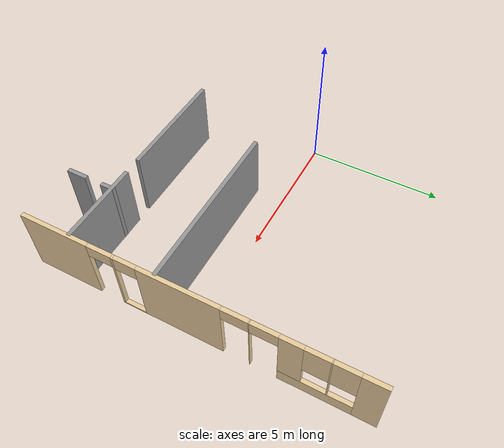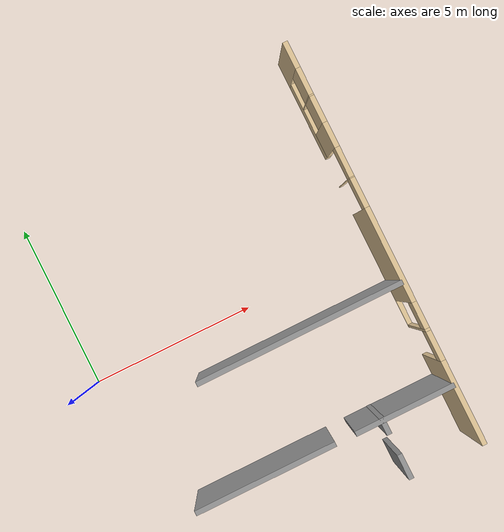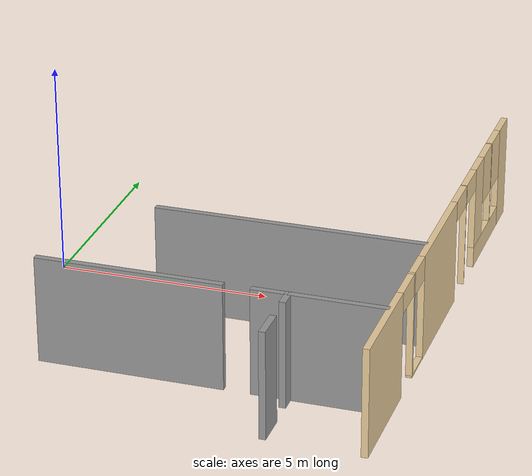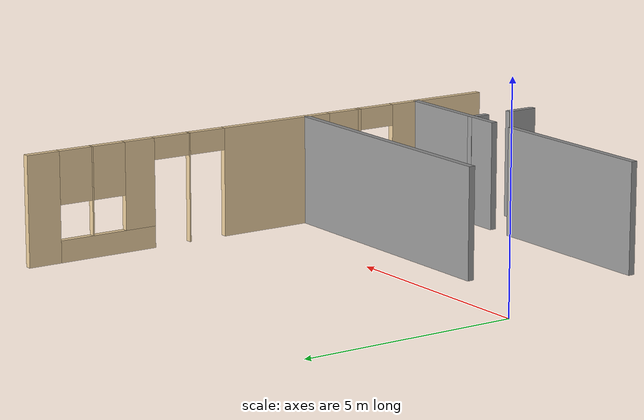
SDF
<sdf version="1.6">
 <model name="melgar_house">
  <link name="Wall_127">
   <pose>5.92408 -1.15557 0 0 -0 0</pose>
   <visual name="Wall_127_Visual">
    <pose>0 0 1.25 0 -0 0</pose>
    <geometry><box><size>6.25 0.15 2.5</size></box></geometry>
    <material>
     <script><uri>file://media/materials/scripts/gazebo.material</uri><name>Gazebo/Grey</name></script>
     <ambient>1 1 1 1</ambient>
     <shader type="pixel"/>
     <diffuse>0.7 0.7 0.7 1</diffuse>
     <specular>0.01 0.01 0.01 1</specular>
     <emissive>0 0 0 1</emissive>
    </material>
    <meta><layer>0</layer></meta>
   </visual>
   <collision name="Wall_127_Collision">
    <pose>0 0 1.25 0 -0 0</pose>
    <geometry><box><size>6.25 0.15 2.5</size></box></geometry>
    <surface>
     <friction>
      <ode><mu>1</mu><mu2>1</mu2><fdir1>0 0 0</fdir1><slip1>0</slip1><slip2>0</slip2></ode>
      <torsional>
       <coefficient>1</coefficient>
       <patch_radius>0</patch_radius>
       <surface_radius>0</surface_radius>
       <use_patch_radius>1</use_patch_radius>
       <ode><slip>0</slip></ode>
      </torsional>
     </friction>
     <bounce><restitution_coefficient>0</restitution_coefficient><threshold>1e+06</threshold></bounce>
     <contact>
      <collide_without_contact>0</collide_without_contact>
      <collide_without_contact_bitmask>1</collide_without_contact_bitmask>
      <collide_bitmask>1</collide_bitmask>
      <ode>
       <soft_cfm>0</soft_cfm>
       <soft_erp>0.2</soft_erp>
       <kp>1e+13</kp>
       <kd>1</kd>
       <max_vel>0.01</max_vel>
       <min_depth>0</min_depth>
      </ode>
      <bullet>
       <split_impulse>1</split_impulse>
       <split_impulse_penetration_threshold>-0.01</split_impulse_penetration_threshold>
       <soft_cfm>0</soft_cfm>
       <soft_erp>0.2</soft_erp>
       <kp>1e+13</kp>
       <kd>1</kd>
      </bullet>
     </contact>
    </surface>
   </collision>
  </link>
  <link name="Wall_129">
   <pose>3.34267 -4.27823 0 0 -0 0</pose>
   <visual name="Wall_129_Visual">
    <pose>0 0 1.25 0 -0 0</pose>
    <geometry><box><size>4.25 0.15 2.5</size></box></geometry>
    <material>
     <script><uri>file://media/materials/scripts/gazebo.material</uri><name>Gazebo/Grey</name></script>
     <ambient>1 1 1 1</ambient>
     <shader type="pixel"/>
     <diffuse>0.7 0.7 0.7 1</diffuse>
     <specular>0.01 0.01 0.01 1</specular>
     <emissive>0 0 0 1</emissive>
    </material>
    <meta><layer>0</layer></meta>
   </visual>
   <collision name="Wall_129_Collision">
    <pose>0 0 1.25 0 -0 0</pose>
    <geometry><box><size>4.25 0.15 2.5</size></box></geometry>
    <surface>
     <friction>
      <ode><mu>1</mu><mu2>1</mu2><fdir1>0 0 0</fdir1><slip1>0</slip1><slip2>0</slip2></ode>
      <torsional>
       <coefficient>1</coefficient>
       <patch_radius>0</patch_radius>
       <surface_radius>0</surface_radius>
       <use_patch_radius>1</use_patch_radius>
       <ode><slip>0</slip></ode>
      </torsional>
     </friction>
     <bounce><restitution_coefficient>0</restitution_coefficient><threshold>1e+06</threshold></bounce>
     <contact>
      <collide_without_contact>0</collide_without_contact>
      <collide_without_contact_bitmask>1</collide_without_contact_bitmask>
      <collide_bitmask>1</collide_bitmask>
      <ode>
       <soft_cfm>0</soft_cfm>
       <soft_erp>0.2</soft_erp>
       <kp>1e+13</kp>
       <kd>1</kd>
       <max_vel>0.01</max_vel>
       <min_depth>0</min_depth>
      </ode>
      <bullet>
       <split_impulse>1</split_impulse>
       <split_impulse_penetration_threshold>-0.01</split_impulse_penetration_threshold>
       <soft_cfm>0</soft_cfm>
       <soft_erp>0.2</soft_erp>
       <kp>1e+13</kp>
       <kd>1</kd>
      </bullet>
     </contact>
    </surface>
   </collision>
  </link>
  <link name="Wall_132">
   <pose>7.56766 -4.27823 0 0 -0 0</pose>
   <visual name="Wall_132_Visual">
    <pose>0 0 1.25 0 -0 0</pose>
    <geometry><box><size>3 0.15 2.5</size></box></geometry>
    <material>
     <script><uri>file://media/materials/scripts/gazebo.material</uri><name>Gazebo/Grey</name></script>
     <ambient>1 1 1 1</ambient>
     <shader type="pixel"/>
     <diffuse>0.7 0.7 0.7 1</diffuse>
     <specular>0.01 0.01 0.01 1</specular>
     <emissive>0 0 0 1</emissive>
    </material>
    <meta><layer>0</layer></meta>
   </visual>
   <collision name="Wall_132_Collision">
    <pose>0 0 1.25 0 -0 0</pose>
    <geometry><box><size>3 0.15 2.5</size></box></geometry>
    <surface>
     <friction>
      <ode><mu>1</mu><mu2>1</mu2><fdir1>0 0 0</fdir1><slip1>0</slip1><slip2>0</slip2></ode>
      <torsional>
       <coefficient>1</coefficient>
       <patch_radius>0</patch_radius>
       <surface_radius>0</surface_radius>
       <use_patch_radius>1</use_patch_radius>
       <ode><slip>0</slip></ode>
      </torsional>
     </friction>
     <bounce><restitution_coefficient>0</restitution_coefficient><threshold>1e+06</threshold></bounce>
     <contact>
      <collide_without_contact>0</collide_without_contact>
      <collide_without_contact_bitmask>1</collide_without_contact_bitmask>
      <collide_bitmask>1</collide_bitmask>
      <ode>
       <soft_cfm>0</soft_cfm>
       <soft_erp>0.2</soft_erp>
       <kp>1e+13</kp>
       <kd>1</kd>
       <max_vel>0.01</max_vel>
       <min_depth>0</min_depth>
      </ode>
      <bullet>
       <split_impulse>1</split_impulse>
       <split_impulse_penetration_threshold>-0.01</split_impulse_penetration_threshold>
       <soft_cfm>0</soft_cfm>
       <soft_erp>0.2</soft_erp>
       <kp>1e+13</kp>
       <kd>1</kd>
      </bullet>
     </contact>
    </surface>
   </collision>
  </link>
  <link name="Wall_135">
   <pose>6.88905 -4.4461 0 0 0 -1.5708</pose>
   <visual name="Wall_135_Visual">
    <pose>0 0 1.25 0 -0 0</pose>
    <geometry><box><size>0.5 0.15 2.5</size></box></geometry>
    <material>
     <script><uri>file://media/materials/scripts/gazebo.material</uri><name>Gazebo/Grey</name></script>
     <ambient>1 1 1 1</ambient>
     <shader type="pixel"/>
     <diffuse>0.7 0.7 0.7 1</diffuse>
     <specular>0.01 0.01 0.01 1</specular>
     <emissive>0 0 0 1</emissive>
    </material>
    <meta><layer>0</layer></meta>
   </visual>
   <collision name="Wall_135_Collision">
    <pose>0 0 1.25 0 -0 0</pose>
    <geometry><box><size>0.5 0.15 2.5</size></box></geometry>
    <surface>
     <friction>
      <ode><mu>1</mu><mu2>1</mu2><fdir1>0 0 0</fdir1><slip1>0</slip1><slip2>0</slip2></ode>
      <torsional>
       <coefficient>1</coefficient>
       <patch_radius>0</patch_radius>
       <surface_radius>0</surface_radius>
       <use_patch_radius>1</use_patch_radius>
       <ode><slip>0</slip></ode>
      </torsional>
     </friction>
     <bounce><restitution_coefficient>0</restitution_coefficient><threshold>1e+06</threshold></bounce>
     <contact>
      <collide_without_contact>0</collide_without_contact>
      <collide_without_contact_bitmask>1</collide_without_contact_bitmask>
      <collide_bitmask>1</collide_bitmask>
      <ode>
       <soft_cfm>0</soft_cfm>
       <soft_erp>0.2</soft_erp>
       <kp>1e+13</kp>
       <kd>1</kd>
       <max_vel>0.01</max_vel>
       <min_depth>0</min_depth>
      </ode>
      <bullet>
       <split_impulse>1</split_impulse>
       <split_impulse_penetration_threshold>-0.01</split_impulse_penetration_threshold>
       <soft_cfm>0</soft_cfm>
       <soft_erp>0.2</soft_erp>
       <kp>1e+13</kp>
       <kd>1</kd>
      </bullet>
     </contact>
    </surface>
   </collision>
  </link>
  <link name="Wall_138">
   <pose>6.88905 -5.6711 0 0 0 -1.5708</pose>
   <visual name="Wall_138_Visual">
    <pose>0 0 1.25 0 -0 0</pose>
    <geometry><box><size>0.75 0.15 2.5</size></box></geometry>
    <material>
     <script><uri>file://media/materials/scripts/gazebo.material</uri><name>Gazebo/Grey</name></script>
     <ambient>1 1 1 1</ambient>
     <shader type="pixel"/>
     <diffuse>0.7 0.7 0.7 1</diffuse>
     <specular>0.01 0.01 0.01 1</specular>
     <emissive>0 0 0 1</emissive>
    </material>
    <meta><layer>0</layer></meta>
   </visual>
   <collision name="Wall_138_Collision">
    <pose>0 0 1.25 0 -0 0</pose>
    <geometry><box><size>0.75 0.15 2.5</size></box></geometry>
    <surface>
     <friction>
      <ode><mu>1</mu><mu2>1</mu2><fdir1>0 0 0</fdir1><slip1>0</slip1><slip2>0</slip2></ode>
      <torsional>
       <coefficient>1</coefficient>
       <patch_radius>0</patch_radius>
       <surface_radius>0</surface_radius>
       <use_patch_radius>1</use_patch_radius>
       <ode><slip>0</slip></ode>
      </torsional>
     </friction>
     <bounce><restitution_coefficient>0</restitution_coefficient><threshold>1e+06</threshold></bounce>
     <contact>
      <collide_without_contact>0</collide_without_contact>
      <collide_without_contact_bitmask>1</collide_without_contact_bitmask>
      <collide_bitmask>1</collide_bitmask>
      <ode>
       <soft_cfm>0</soft_cfm>
       <soft_erp>0.2</soft_erp>
       <kp>1e+13</kp>
       <kd>1</kd>
       <max_vel>0.01</max_vel>
       <min_depth>0</min_depth>
      </ode>
      <bullet>
       <split_impulse>1</split_impulse>
       <split_impulse_penetration_threshold>-0.01</split_impulse_penetration_threshold>
       <soft_cfm>0</soft_cfm>
       <soft_erp>0.2</soft_erp>
       <kp>1e+13</kp>
       <kd>1</kd>
      </bullet>
     </contact>
    </surface>
   </collision>
  </link>
  <link name="Wall_48">
   <pose>9.07854 0 0 0 0 -1.5708</pose>
   <visual name="Wall_48_Visual_0">
    <pose>-5.7046 0 1.25 0 -0 0</pose>
    <geometry><box><size>0.790797 0.15 2.5</size></box></geometry>
    <material>
     <script><uri>file://media/materials/scripts/gazebo.material</uri><name>Gazebo/Grey</name></script>
     <ambient>0.921569 0.807843 0.615686 1</ambient>
     <shader type="pixel"/>
     <diffuse>0.7 0.7 0.7 1</diffuse>
     <specular>0.01 0.01 0.01 1</specular>
     <emissive>0 0 0 1</emissive>
    </material>
    <meta><layer>0</layer></meta>
   </visual>
   <visual name="Wall_48_Visual_1">
    <pose>-2.00674 0 1.25 0 -0 0</pose>
    <geometry><box><size>0.02806 0.15 2.5</size></box></geometry>
    <material>
     <script><uri>file://media/materials/scripts/gazebo.material</uri><name>Gazebo/Grey</name></script>
     <ambient>0.921569 0.807843 0.615686 1</ambient>
     <shader type="pixel"/>
     <diffuse>0.7 0.7 0.7 1</diffuse>
     <specular>0.01 0.01 0.01 1</specular>
     <emissive>0 0 0 1</emissive>
    </material>
    <meta><layer>0</layer></meta>
   </visual>
   <visual name="Wall_48_Visual_2">
    <pose>0.338409 0 1.25 0 -0 0</pose>
    <geometry><box><size>2.86224 0.15 2.5</size></box></geometry>
    <material>
     <script><uri>file://media/materials/scripts/gazebo.material</uri><name>Gazebo/Grey</name></script>
     <ambient>0.921569 0.807843 0.615686 1</ambient>
     <shader type="pixel"/>
     <diffuse>0.7 0.7 0.7 1</diffuse>
     <specular>0.01 0.01 0.01 1</specular>
     <emissive>0 0 0 1</emissive>
    </material>
    <meta><layer>0</layer></meta>
   </visual>
   <visual name="Wall_48_Visual_3">
    <pose>4.82379 0 1.25 0 -0 0</pose>
    <geometry><box><size>2.55241 0.15 2.5</size></box></geometry>
    <material>
     <script><uri>file://media/materials/scripts/gazebo.material</uri><name>Gazebo/Grey</name></script>
     <ambient>0.921569 0.807843 0.615686 1</ambient>
     <shader type="pixel"/>
     <diffuse>0.7 0.7 0.7 1</diffuse>
     <specular>0.01 0.01 0.01 1</specular>
     <emissive>0 0 0 1</emissive>
    </material>
    <meta><layer>0</layer></meta>
   </visual>
   <visual name="Wall_48_Visual_4">
    <pose>-4.11499 0 0.25 0 -0 0</pose>
    <geometry><box><size>2.38843 0.15 0.5</size></box></geometry>
    <material>
     <script><uri>file://media/materials/scripts/gazebo.material</uri><name>Gazebo/Grey</name></script>
     <ambient>0.921569 0.807843 0.615686 1</ambient>
     <shader type="pixel"/>
     <diffuse>0.7 0.7 0.7 1</diffuse>
     <specular>0.01 0.01 0.01 1</specular>
     <emissive>0 0 0 1</emissive>
    </material>
    <meta><layer>0</layer></meta>
   </visual>
   <visual name="Wall_48_Visual_5">
    <pose>2.20856 0 0.025 0 -0 0</pose>
    <geometry><box><size>0.87806 0.15 0.05</size></box></geometry>
    <material>
     <script><uri>file://media/materials/scripts/gazebo.material</uri><name>Gazebo/Grey</name></script>
     <ambient>0.921569 0.807843 0.615686 1</ambient>
     <shader type="pixel"/>
     <diffuse>0.7 0.7 0.7 1</diffuse>
     <specular>0.01 0.01 0.01 1</specular>
     <emissive>0 0 0 1</emissive>
    </material>
    <meta><layer>0</layer></meta>
   </visual>
   <visual name="Wall_48_Visual_6">
    <pose>2.60856 0 1.275 0 -0 0</pose>
    <geometry><box><size>0.07806 0.15 2.45</size></box></geometry>
    <material>
     <script><uri>file://media/materials/scripts/gazebo.material</uri><name>Gazebo/Grey</name></script>
     <ambient>0.921569 0.807843 0.615686 1</ambient>
     <shader type="pixel"/>
     <diffuse>0.7 0.7 0.7 1</diffuse>
     <specular>0.01 0.01 0.01 1</specular>
     <emissive>0 0 0 1</emissive>
    </material>
    <meta><layer>0</layer></meta>
   </visual>
   <visual name="Wall_48_Visual_7">
    <pose>-4.49067 0 1.5 0 -0 0</pose>
    <geometry><box><size>0.037074 0.15 2</size></box></geometry>
    <material>
     <script><uri>file://media/materials/scripts/gazebo.material</uri><name>Gazebo/Grey</name></script>
     <ambient>0.921569 0.807843 0.615686 1</ambient>
     <shader type="pixel"/>
     <diffuse>0.7 0.7 0.7 1</diffuse>
     <specular>0.01 0.01 0.01 1</specular>
     <emissive>0 0 0 1</emissive>
    </material>
    <meta><layer>0</layer></meta>
   </visual>
   <visual name="Wall_48_Visual_9">
    <pose>-4.9092 0 1.9 0 -0 0</pose>
    <geometry><box><size>0.8 0.15 1.2</size></box></geometry>
    <material>
     <script><uri>file://media/materials/scripts/gazebo.material</uri><name>Gazebo/Grey</name></script>
     <ambient>0.921569 0.807843 0.615686 1</ambient>
     <shader type="pixel"/>
     <diffuse>0.7 0.7 0.7 1</diffuse>
     <specular>0.01 0.01 0.01 1</specular>
     <emissive>0 0 0 1</emissive>
    </material>
    <meta><layer>0</layer></meta>
   </visual>
   <visual name="Wall_48_Visual_8">
    <pose>-3.29645 0 1.5 0 -0 0</pose>
    <geometry><box><size>0.751358 0.15 2</size></box></geometry>
    <material>
     <script><uri>file://media/materials/scripts/gazebo.material</uri><name>Gazebo/Grey</name></script>
     <ambient>0.921569 0.807843 0.615686 1</ambient>
     <shader type="pixel"/>
     <diffuse>0.7 0.7 0.7 1</diffuse>
     <specular>0.01 0.01 0.01 1</specular>
     <emissive>0 0 0 1</emissive>
    </material>
    <meta><layer>0</layer></meta>
   </visual>
   <visual name="Wall_48_Visual_10">
    <pose>-4.07213 0 1.9 0 -0 0</pose>
    <geometry><box><size>0.8 0.15 1.2</size></box></geometry>
    <material>
     <script><uri>file://media/materials/scripts/gazebo.material</uri><name>Gazebo/Grey</name></script>
     <ambient>0.921569 0.807843 0.615686 1</ambient>
     <shader type="pixel"/>
     <diffuse>0.7 0.7 0.7 1</diffuse>
     <specular>0.01 0.01 0.01 1</specular>
     <emissive>0 0 0 1</emissive>
    </material>
    <meta><layer>0</layer></meta>
   </visual>
   <visual name="Wall_48_Visual_11">
    <pose>2.16953 0 2.225 0 -0 0</pose>
    <geometry><box><size>0.8 0.15 0.55</size></box></geometry>
    <material>
     <script><uri>file://media/materials/scripts/gazebo.material</uri><name>Gazebo/Grey</name></script>
     <ambient>0.921569 0.807843 0.615686 1</ambient>
     <shader type="pixel"/>
     <diffuse>0.7 0.7 0.7 1</diffuse>
     <specular>0.01 0.01 0.01 1</specular>
     <emissive>0 0 0 1</emissive>
    </material>
    <meta><layer>0</layer></meta>
   </visual>
   <visual name="Wall_48_Visual_12">
    <pose>-1.54271 0 2.25 0 -0 0</pose>
    <geometry><box><size>0.9 0.15 0.5</size></box></geometry>
    <material>
     <script><uri>file://media/materials/scripts/gazebo.material</uri><name>Gazebo/Grey</name></script>
     <ambient>0.921569 0.807843 0.615686 1</ambient>
     <shader type="pixel"/>
     <diffuse>0.7 0.7 0.7 1</diffuse>
     <specular>0.01 0.01 0.01 1</specular>
     <emissive>0 0 0 1</emissive>
    </material>
    <meta><layer>0</layer></meta>
   </visual>
   <visual name="Wall_48_Visual_13">
    <pose>3.09759 0 2.25 0 -0 0</pose>
    <geometry><box><size>0.9 0.15 0.5</size></box></geometry>
    <material>
     <script><uri>file://media/materials/scripts/gazebo.material</uri><name>Gazebo/Grey</name></script>
     <ambient>0.921569 0.807843 0.615686 1</ambient>
     <shader type="pixel"/>
     <diffuse>0.7 0.7 0.7 1</diffuse>
     <specular>0.01 0.01 0.01 1</specular>
     <emissive>0 0 0 1</emissive>
    </material>
    <meta><layer>0</layer></meta>
   </visual>
   <visual name="Wall_48_Visual_14">
    <pose>-2.47077 0 2.25 0 -0 0</pose>
    <geometry><box><size>0.9 0.15 0.5</size></box></geometry>
    <material>
     <script><uri>file://media/materials/scripts/gazebo.material</uri><name>Gazebo/Grey</name></script>
     <ambient>0.921569 0.807843 0.615686 1</ambient>
     <shader type="pixel"/>
     <diffuse>0.7 0.7 0.7 1</diffuse>
     <specular>0.01 0.01 0.01 1</specular>
     <emissive>0 0 0 1</emissive>
    </material>
    <meta><layer>0</layer></meta>
   </visual>
   <collision name="Wall_48_Collision_0">
    <pose>-5.7046 0 1.25 0 -0 0</pose>
    <geometry><box><size>0.790797 0.15 2.5</size></box></geometry>
    <surface>
     <friction>
      <ode><mu>1</mu><mu2>1</mu2><fdir1>0 0 0</fdir1><slip1>0</slip1><slip2>0</slip2></ode>
      <torsional>
       <coefficient>1</coefficient>
       <patch_radius>0</patch_radius>
       <surface_radius>0</surface_radius>
       <use_patch_radius>1</use_patch_radius>
       <ode><slip>0</slip></ode>
      </torsional>
     </friction>
     <bounce><restitution_coefficient>0</restitution_coefficient><threshold>1e+06</threshold></bounce>
     <contact>
      <collide_without_contact>0</collide_without_contact>
      <collide_without_contact_bitmask>1</collide_without_contact_bitmask>
      <collide_bitmask>1</collide_bitmask>
      <ode>
       <soft_cfm>0</soft_cfm>
       <soft_erp>0.2</soft_erp>
       <kp>1e+13</kp>
       <kd>1</kd>
       <max_vel>0.01</max_vel>
       <min_depth>0</min_depth>
      </ode>
      <bullet>
       <split_impulse>1</split_impulse>
       <split_impulse_penetration_threshold>-0.01</split_impulse_penetration_threshold>
       <soft_cfm>0</soft_cfm>
       <soft_erp>0.2</soft_erp>
       <kp>1e+13</kp>
       <kd>1</kd>
      </bullet>
     </contact>
    </surface>
   </collision>
   <collision name="Wall_48_Collision_1">
    <pose>-2.00674 0 1.25 0 -0 0</pose>
    <geometry><box><size>0.02806 0.15 2.5</size></box></geometry>
    <surface>
     <friction>
      <ode><mu>1</mu><mu2>1</mu2><fdir1>0 0 0</fdir1><slip1>0</slip1><slip2>0</slip2></ode>
      <torsional>
       <coefficient>1</coefficient>
       <patch_radius>0</patch_radius>
       <surface_radius>0</surface_radius>
       <use_patch_radius>1</use_patch_radius>
       <ode><slip>0</slip></ode>
      </torsional>
     </friction>
     <bounce><restitution_coefficient>0</restitution_coefficient><threshold>1e+06</threshold></bounce>
     <contact>
      <collide_without_contact>0</collide_without_contact>
      <collide_without_contact_bitmask>1</collide_without_contact_bitmask>
      <collide_bitmask>1</collide_bitmask>
      <ode>
       <soft_cfm>0</soft_cfm>
       <soft_erp>0.2</soft_erp>
       <kp>1e+13</kp>
       <kd>1</kd>
       <max_vel>0.01</max_vel>
       <min_depth>0</min_depth>
      </ode>
      <bullet>
       <split_impulse>1</split_impulse>
       <split_impulse_penetration_threshold>-0.01</split_impulse_penetration_threshold>
       <soft_cfm>0</soft_cfm>
       <soft_erp>0.2</soft_erp>
       <kp>1e+13</kp>
       <kd>1</kd>
      </bullet>
     </contact>
    </surface>
   </collision>
   <collision name="Wall_48_Collision_2">
    <pose>0.338409 0 1.25 0 -0 0</pose>
    <geometry><box><size>2.86224 0.15 2.5</size></box></geometry>
    <surface>
     <friction>
      <ode><mu>1</mu><mu2>1</mu2><fdir1>0 0 0</fdir1><slip1>0</slip1><slip2>0</slip2></ode>
      <torsional>
       <coefficient>1</coefficient>
       <patch_radius>0</patch_radius>
       <surface_radius>0</surface_radius>
       <use_patch_radius>1</use_patch_radius>
       <ode><slip>0</slip></ode>
      </torsional>
     </friction>
     <bounce><restitution_coefficient>0</restitution_coefficient><threshold>1e+06</threshold></bounce>
     <contact>
      <collide_without_contact>0</collide_without_contact>
      <collide_without_contact_bitmask>1</collide_without_contact_bitmask>
      <collide_bitmask>1</collide_bitmask>
      <ode>
       <soft_cfm>0</soft_cfm>
       <soft_erp>0.2</soft_erp>
       <kp>1e+13</kp>
       <kd>1</kd>
       <max_vel>0.01</max_vel>
       <min_depth>0</min_depth>
      </ode>
      <bullet>
       <split_impulse>1</split_impulse>
       <split_impulse_penetration_threshold>-0.01</split_impulse_penetration_threshold>
       <soft_cfm>0</soft_cfm>
       <soft_erp>0.2</soft_erp>
       <kp>1e+13</kp>
       <kd>1</kd>
      </bullet>
     </contact>
    </surface>
   </collision>
   <collision name="Wall_48_Collision_3">
    <pose>4.82379 0 1.25 0 -0 0</pose>
    <geometry><box><size>2.55241 0.15 2.5</size></box></geometry>
    <surface>
     <friction>
      <ode><mu>1</mu><mu2>1</mu2><fdir1>0 0 0</fdir1><slip1>0</slip1><slip2>0</slip2></ode>
      <torsional>
       <coefficient>1</coefficient>
       <patch_radius>0</patch_radius>
       <surface_radius>0</surface_radius>
       <use_patch_radius>1</use_patch_radius>
       <ode><slip>0</slip></ode>
      </torsional>
     </friction>
     <bounce><restitution_coefficient>0</restitution_coefficient><threshold>1e+06</threshold></bounce>
     <contact>
      <collide_without_contact>0</collide_without_contact>
      <collide_without_contact_bitmask>1</collide_without_contact_bitmask>
      <collide_bitmask>1</collide_bitmask>
      <ode>
       <soft_cfm>0</soft_cfm>
       <soft_erp>0.2</soft_erp>
       <kp>1e+13</kp>
       <kd>1</kd>
       <max_vel>0.01</max_vel>
       <min_depth>0</min_depth>
      </ode>
      <bullet>
       <split_impulse>1</split_impulse>
       <split_impulse_penetration_threshold>-0.01</split_impulse_penetration_threshold>
       <soft_cfm>0</soft_cfm>
       <soft_erp>0.2</soft_erp>
       <kp>1e+13</kp>
       <kd>1</kd>
      </bullet>
     </contact>
    </surface>
   </collision>
   <collision name="Wall_48_Collision_4">
    <pose>-4.11499 0 0.25 0 -0 0</pose>
    <geometry><box><size>2.38843 0.15 0.5</size></box></geometry>
    <surface>
     <friction>
      <ode><mu>1</mu><mu2>1</mu2><fdir1>0 0 0</fdir1><slip1>0</slip1><slip2>0</slip2></ode>
      <torsional>
       <coefficient>1</coefficient>
       <patch_radius>0</patch_radius>
       <surface_radius>0</surface_radius>
       <use_patch_radius>1</use_patch_radius>
       <ode><slip>0</slip></ode>
      </torsional>
     </friction>
     <bounce><restitution_coefficient>0</restitution_coefficient><threshold>1e+06</threshold></bounce>
     <contact>
      <collide_without_contact>0</collide_without_contact>
      <collide_without_contact_bitmask>1</collide_without_contact_bitmask>
      <collide_bitmask>1</collide_bitmask>
      <ode>
       <soft_cfm>0</soft_cfm>
       <soft_erp>0.2</soft_erp>
       <kp>1e+13</kp>
       <kd>1</kd>
       <max_vel>0.01</max_vel>
       <min_depth>0</min_depth>
      </ode>
      <bullet>
       <split_impulse>1</split_impulse>
       <split_impulse_penetration_threshold>-0.01</split_impulse_penetration_threshold>
       <soft_cfm>0</soft_cfm>
       <soft_erp>0.2</soft_erp>
       <kp>1e+13</kp>
       <kd>1</kd>
      </bullet>
     </contact>
    </surface>
   </collision>
   <collision name="Wall_48_Collision_5">
    <pose>2.20856 0 0.025 0 -0 0</pose>
    <geometry><box><size>0.87806 0.15 0.05</size></box></geometry>
    <surface>
     <friction>
      <ode><mu>1</mu><mu2>1</mu2><fdir1>0 0 0</fdir1><slip1>0</slip1><slip2>0</slip2></ode>
      <torsional>
       <coefficient>1</coefficient>
       <patch_radius>0</patch_radius>
       <surface_radius>0</surface_radius>
       <use_patch_radius>1</use_patch_radius>
       <ode><slip>0</slip></ode>
      </torsional>
     </friction>
     <bounce><restitution_coefficient>0</restitution_coefficient><threshold>1e+06</threshold></bounce>
     <contact>
      <collide_without_contact>0</collide_without_contact>
      <collide_without_contact_bitmask>1</collide_without_contact_bitmask>
      <collide_bitmask>1</collide_bitmask>
      <ode>
       <soft_cfm>0</soft_cfm>
       <soft_erp>0.2</soft_erp>
       <kp>1e+13</kp>
       <kd>1</kd>
       <max_vel>0.01</max_vel>
       <min_depth>0</min_depth>
      </ode>
      <bullet>
       <split_impulse>1</split_impulse>
       <split_impulse_penetration_threshold>-0.01</split_impulse_penetration_threshold>
       <soft_cfm>0</soft_cfm>
       <soft_erp>0.2</soft_erp>
       <kp>1e+13</kp>
       <kd>1</kd>
      </bullet>
     </contact>
    </surface>
   </collision>
   <collision name="Wall_48_Collision_6">
    <pose>2.60856 0 1.275 0 -0 0</pose>
    <geometry><box><size>0.07806 0.15 2.45</size></box></geometry>
    <surface>
     <friction>
      <ode><mu>1</mu><mu2>1</mu2><fdir1>0 0 0</fdir1><slip1>0</slip1><slip2>0</slip2></ode>
      <torsional>
       <coefficient>1</coefficient>
       <patch_radius>0</patch_radius>
       <surface_radius>0</surface_radius>
       <use_patch_radius>1</use_patch_radius>
       <ode><slip>0</slip></ode>
      </torsional>
     </friction>
     <bounce><restitution_coefficient>0</restitution_coefficient><threshold>1e+06</threshold></bounce>
     <contact>
      <collide_without_contact>0</collide_without_contact>
      <collide_without_contact_bitmask>1</collide_without_contact_bitmask>
      <collide_bitmask>1</collide_bitmask>
      <ode>
       <soft_cfm>0</soft_cfm>
       <soft_erp>0.2</soft_erp>
       <kp>1e+13</kp>
       <kd>1</kd>
       <max_vel>0.01</max_vel>
       <min_depth>0</min_depth>
      </ode>
      <bullet>
       <split_impulse>1</split_impulse>
       <split_impulse_penetration_threshold>-0.01</split_impulse_penetration_threshold>
       <soft_cfm>0</soft_cfm>
       <soft_erp>0.2</soft_erp>
       <kp>1e+13</kp>
       <kd>1</kd>
      </bullet>
     </contact>
    </surface>
   </collision>
   <collision name="Wall_48_Collision_7">
    <pose>-4.49067 0 1.5 0 -0 0</pose>
    <geometry><box><size>0.037074 0.15 2</size></box></geometry>
    <surface>
     <friction>
      <ode><mu>1</mu><mu2>1</mu2><fdir1>0 0 0</fdir1><slip1>0</slip1><slip2>0</slip2></ode>
      <torsional>
       <coefficient>1</coefficient>
       <patch_radius>0</patch_radius>
       <surface_radius>0</surface_radius>
       <use_patch_radius>1</use_patch_radius>
       <ode><slip>0</slip></ode>
      </torsional>
     </friction>
     <bounce><restitution_coefficient>0</restitution_coefficient><threshold>1e+06</threshold></bounce>
     <contact>
      <collide_without_contact>0</collide_without_contact>
      <collide_without_contact_bitmask>1</collide_without_contact_bitmask>
      <collide_bitmask>1</collide_bitmask>
      <ode>
       <soft_cfm>0</soft_cfm>
       <soft_erp>0.2</soft_erp>
       <kp>1e+13</kp>
       <kd>1</kd>
       <max_vel>0.01</max_vel>
       <min_depth>0</min_depth>
      </ode>
      <bullet>
       <split_impulse>1</split_impulse>
       <split_impulse_penetration_threshold>-0.01</split_impulse_penetration_threshold>
       <soft_cfm>0</soft_cfm>
       <soft_erp>0.2</soft_erp>
       <kp>1e+13</kp>
       <kd>1</kd>
      </bullet>
     </contact>
    </surface>
   </collision>
   <collision name="Wall_48_Collision_9">
    <pose>-4.9092 0 1.9 0 -0 0</pose>
    <geometry><box><size>0.8 0.15 1.2</size></box></geometry>
    <surface>
     <friction>
      <ode><mu>1</mu><mu2>1</mu2><fdir1>0 0 0</fdir1><slip1>0</slip1><slip2>0</slip2></ode>
      <torsional>
       <coefficient>1</coefficient>
       <patch_radius>0</patch_radius>
       <surface_radius>0</surface_radius>
       <use_patch_radius>1</use_patch_radius>
       <ode><slip>0</slip></ode>
      </torsional>
     </friction>
     <bounce><restitution_coefficient>0</restitution_coefficient><threshold>1e+06</threshold></bounce>
     <contact>
      <collide_without_contact>0</collide_without_contact>
      <collide_without_contact_bitmask>1</collide_without_contact_bitmask>
      <collide_bitmask>1</collide_bitmask>
      <ode>
       <soft_cfm>0</soft_cfm>
       <soft_erp>0.2</soft_erp>
       <kp>1e+13</kp>
       <kd>1</kd>
       <max_vel>0.01</max_vel>
       <min_depth>0</min_depth>
      </ode>
      <bullet>
       <split_impulse>1</split_impulse>
       <split_impulse_penetration_threshold>-0.01</split_impulse_penetration_threshold>
       <soft_cfm>0</soft_cfm>
       <soft_erp>0.2</soft_erp>
       <kp>1e+13</kp>
       <kd>1</kd>
      </bullet>
     </contact>
    </surface>
   </collision>
   <collision name="Wall_48_Collision_8">
    <pose>-3.29645 0 1.5 0 -0 0</pose>
    <geometry><box><size>0.751358 0.15 2</size></box></geometry>
    <surface>
     <friction>
      <ode><mu>1</mu><mu2>1</mu2><fdir1>0 0 0</fdir1><slip1>0</slip1><slip2>0</slip2></ode>
      <torsional>
       <coefficient>1</coefficient>
       <patch_radius>0</patch_radius>
       <surface_radius>0</surface_radius>
       <use_patch_radius>1</use_patch_radius>
       <ode><slip>0</slip></ode>
      </torsional>
     </friction>
     <bounce><restitution_coefficient>0</restitution_coefficient><threshold>1e+06</threshold></bounce>
     <contact>
      <collide_without_contact>0</collide_without_contact>
      <collide_without_contact_bitmask>1</collide_without_contact_bitmask>
      <collide_bitmask>1</collide_bitmask>
      <ode>
       <soft_cfm>0</soft_cfm>
       <soft_erp>0.2</soft_erp>
       <kp>1e+13</kp>
       <kd>1</kd>
       <max_vel>0.01</max_vel>
       <min_depth>0</min_depth>
      </ode>
      <bullet>
       <split_impulse>1</split_impulse>
       <split_impulse_penetration_threshold>-0.01</split_impulse_penetration_threshold>
       <soft_cfm>0</soft_cfm>
       <soft_erp>0.2</soft_erp>
       <kp>1e+13</kp>
       <kd>1</kd>
      </bullet>
     </contact>
    </surface>
   </collision>
   <collision name="Wall_48_Collision_10">
    <pose>-4.07213 0 1.9 0 -0 0</pose>
    <geometry><box><size>0.8 0.15 1.2</size></box></geometry>
    <surface>
     <friction>
      <ode><mu>1</mu><mu2>1</mu2><fdir1>0 0 0</fdir1><slip1>0</slip1><slip2>0</slip2></ode>
      <torsional>
       <coefficient>1</coefficient>
       <patch_radius>0</patch_radius>
       <surface_radius>0</surface_radius>
       <use_patch_radius>1</use_patch_radius>
       <ode><slip>0</slip></ode>
      </torsional>
     </friction>
     <bounce><restitution_coefficient>0</restitution_coefficient><threshold>1e+06</threshold></bounce>
     <contact>
      <collide_without_contact>0</collide_without_contact>
      <collide_without_contact_bitmask>1</collide_without_contact_bitmask>
      <collide_bitmask>1</collide_bitmask>
      <ode>
       <soft_cfm>0</soft_cfm>
       <soft_erp>0.2</soft_erp>
       <kp>1e+13</kp>
       <kd>1</kd>
       <max_vel>0.01</max_vel>
       <min_depth>0</min_depth>
      </ode>
      <bullet>
       <split_impulse>1</split_impulse>
       <split_impulse_penetration_threshold>-0.01</split_impulse_penetration_threshold>
       <soft_cfm>0</soft_cfm>
       <soft_erp>0.2</soft_erp>
       <kp>1e+13</kp>
       <kd>1</kd>
      </bullet>
     </contact>
    </surface>
   </collision>
   <collision name="Wall_48_Collision_11">
    <pose>2.16953 0 2.225 0 -0 0</pose>
    <geometry><box><size>0.8 0.15 0.55</size></box></geometry>
    <surface>
     <friction>
      <ode><mu>1</mu><mu2>1</mu2><fdir1>0 0 0</fdir1><slip1>0</slip1><slip2>0</slip2></ode>
      <torsional>
       <coefficient>1</coefficient>
       <patch_radius>0</patch_radius>
       <surface_radius>0</surface_radius>
       <use_patch_radius>1</use_patch_radius>
       <ode><slip>0</slip></ode>
      </torsional>
     </friction>
     <bounce><restitution_coefficient>0</restitution_coefficient><threshold>1e+06</threshold></bounce>
     <contact>
      <collide_without_contact>0</collide_without_contact>
      <collide_without_contact_bitmask>1</collide_without_contact_bitmask>
      <collide_bitmask>1</collide_bitmask>
      <ode>
       <soft_cfm>0</soft_cfm>
       <soft_erp>0.2</soft_erp>
       <kp>1e+13</kp>
       <kd>1</kd>
       <max_vel>0.01</max_vel>
       <min_depth>0</min_depth>
      </ode>
      <bullet>
       <split_impulse>1</split_impulse>
       <split_impulse_penetration_threshold>-0.01</split_impulse_penetration_threshold>
       <soft_cfm>0</soft_cfm>
       <soft_erp>0.2</soft_erp>
       <kp>1e+13</kp>
       <kd>1</kd>
      </bullet>
     </contact>
    </surface>
   </collision>
   <collision name="Wall_48_Collision_12">
    <pose>-1.54271 0 2.25 0 -0 0</pose>
    <geometry><box><size>0.9 0.15 0.5</size></box></geometry>
    <surface>
     <friction>
      <ode><mu>1</mu><mu2>1</mu2><fdir1>0 0 0</fdir1><slip1>0</slip1><slip2>0</slip2></ode>
      <torsional>
       <coefficient>1</coefficient>
       <patch_radius>0</patch_radius>
       <surface_radius>0</surface_radius>
       <use_patch_radius>1</use_patch_radius>
       <ode><slip>0</slip></ode>
      </torsional>
     </friction>
     <bounce><restitution_coefficient>0</restitution_coefficient><threshold>1e+06</threshold></bounce>
     <contact>
      <collide_without_contact>0</collide_without_contact>
      <collide_without_contact_bitmask>1</collide_without_contact_bitmask>
      <collide_bitmask>1</collide_bitmask>
      <ode>
       <soft_cfm>0</soft_cfm>
       <soft_erp>0.2</soft_erp>
       <kp>1e+13</kp>
       <kd>1</kd>
       <max_vel>0.01</max_vel>
       <min_depth>0</min_depth>
      </ode>
      <bullet>
       <split_impulse>1</split_impulse>
       <split_impulse_penetration_threshold>-0.01</split_impulse_penetration_threshold>
       <soft_cfm>0</soft_cfm>
       <soft_erp>0.2</soft_erp>
       <kp>1e+13</kp>
       <kd>1</kd>
      </bullet>
     </contact>
    </surface>
   </collision>
   <collision name="Wall_48_Collision_14">
    <pose>-2.47077 0 2.25 0 -0 0</pose>
    <geometry><box><size>0.9 0.15 0.5</size></box></geometry>
    <surface>
     <friction>
      <ode><mu>1</mu><mu2>1</mu2><fdir1>0 0 0</fdir1><slip1>0</slip1><slip2>0</slip2></ode>
      <torsional>
       <coefficient>1</coefficient>
       <patch_radius>0</patch_radius>
       <surface_radius>0</surface_radius>
       <use_patch_radius>1</use_patch_radius>
       <ode><slip>0</slip></ode>
      </torsional>
     </friction>
     <bounce><restitution_coefficient>0</restitution_coefficient><threshold>1e+06</threshold></bounce>
     <contact>
      <collide_without_contact>0</collide_without_contact>
      <collide_without_contact_bitmask>1</collide_without_contact_bitmask>
      <collide_bitmask>1</collide_bitmask>
      <ode>
       <soft_cfm>0</soft_cfm>
       <soft_erp>0.2</soft_erp>
       <kp>1e+13</kp>
       <kd>1</kd>
       <max_vel>0.01</max_vel>
       <min_depth>0</min_depth>
      </ode>
      <bullet>
       <split_impulse>1</split_impulse>
       <split_impulse_penetration_threshold>-0.01</split_impulse_penetration_threshold>
       <soft_cfm>0</soft_cfm>
       <soft_erp>0.2</soft_erp>
       <kp>1e+13</kp>
       <kd>1</kd>
      </bullet>
     </contact>
    </surface>
   </collision>
   <collision name="Wall_48_Collision_13">
    <pose>3.09759 0 2.25 0 -0 0</pose>
    <geometry><box><size>0.9 0.15 0.5</size></box></geometry>
    <surface>
     <friction>
      <ode><mu>1</mu><mu2>1</mu2><fdir1>0 0 0</fdir1><slip1>0</slip1><slip2>0</slip2></ode>
      <torsional>
       <coefficient>1</coefficient>
       <patch_radius>0</patch_radius>
       <surface_radius>0</surface_radius>
       <use_patch_radius>1</use_patch_radius>
       <ode><slip>0</slip></ode>
      </torsional>
     </friction>
     <bounce><restitution_coefficient>0</restitution_coefficient><threshold>1e+06</threshold></bounce>
     <contact>
      <collide_without_contact>0</collide_without_contact>
      <collide_without_contact_bitmask>1</collide_without_contact_bitmask>
      <collide_bitmask>1</collide_bitmask>
      <ode>
       <soft_cfm>0</soft_cfm>
       <soft_erp>0.2</soft_erp>
       <kp>1e+13</kp>
       <kd>1</kd>
       <max_vel>0.01</max_vel>
       <min_depth>0</min_depth>
      </ode>
      <bullet>
       <split_impulse>1</split_impulse>
       <split_impulse_penetration_threshold>-0.01</split_impulse_penetration_threshold>
       <soft_cfm>0</soft_cfm>
       <soft_erp>0.2</soft_erp>
       <kp>1e+13</kp>
       <kd>1</kd>
      </bullet>
     </contact>
    </surface>
   </collision>
  </link>
  <static>1</static>
 </model>
</sdf>
